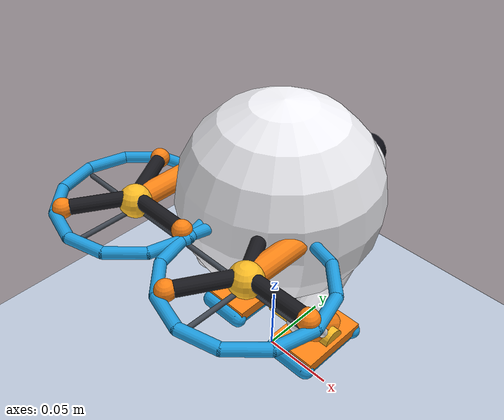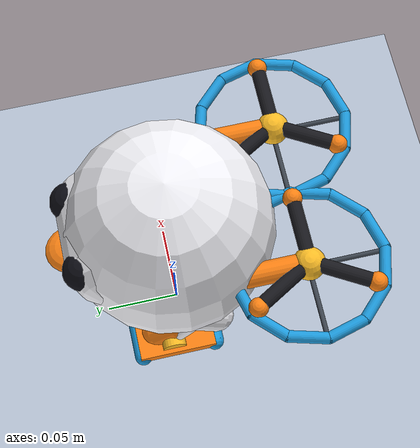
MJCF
<mujoco model="bipedal_vtol_robot_bird">
    <compiler angle="radian" coordinate="local" inertiafromgeom="true"/>
    <option gravity="0 0 -9.81" timestep="0.002" integrator="RK4"/>

    <default>
        <joint damping="0.15" armature="0.02"/>
        <geom friction="2.0 0.1 0.1" density="50" solref="0.01 1" solimp="0.90 0.95 0.001"/>
        <position kp="350" kv="20" forcerange="-35 35"/>
    </default>

    <visual>
        <headlight diffuse="0.65 0.65 0.65" ambient="0.45 0.45 0.45" specular="0.0 0.0 0.0"/>
        <rgba haze="0.15 0.25 0.35 1"/>
    </visual>

    <asset>
        <texture type="skybox" builtin="gradient" rgb1="0.5 0.7 0.9" rgb2="0.9 0.95 1.0" width="512" height="512"/>
        <texture name="grid" type="2d" builtin="checker" width="512" height="512" rgb1="0.90 0.92 0.96" rgb2="0.55 0.62 0.72"/>
        <material name="grid_mat" texture="grid" texrepeat="8 8" reflectance="0.05"/>

        <material name="body_white" rgba="0.96 0.96 0.98 1.0" specular="0.6" shininess="0.9"/>
        <material name="body_accent" rgba="1.0 0.52 0.08 1.0" specular="0.7" shininess="0.8"/>
        <material name="eye_black" rgba="0.05 0.05 0.08 1.0" specular="0.9" shininess="1.0"/>
        <material name="eye_pupil" rgba="0.15 0.75 1.0 1.0" emission="0.6"/>
        <material name="leg_metal" rgba="0.25 0.28 0.32 1.0" specular="0.8"/>

        <material name="duct_rim_cyan" rgba="0.12 0.62 0.88 1.0" specular="0.8" shininess="0.9"/>
        <material name="mesh_grille" rgba="0.2 0.25 0.3 0.85" specular="0.7"/>
        <material name="prop_carbon" rgba="0.1 0.1 0.12 1.0" specular="0.5"/>
        <material name="spinner_gold" rgba="1.0 0.75 0.15 1.0" specular="0.9"/>
    </asset>

    <worldbody>
        <light pos="0 -1 3.5" dir="0 0.3 -1" directional="true" castshadow="true"/>
        <geom name="floor" type="plane" size="10 10 0.1" material="grid_mat" conaffinity="15" contype="15"/>

        <!-- 🐦 로봇새 메인 바디 -->
        <body name="torso" pos="0 0 0.14">
            <freejoint name="root"/>

            <geom name="torso_sphere" type="sphere" size="0.065" mass="0.15" material="body_white"/>
            <!-- 하단 배터리 저중심 웨이트 (몸체 구체 내부 안쪽에 쏙 수납하여 시야 간섭 100% 차단) -->
            <geom name="battery_weight" type="box" size="0.025 0.025 0.012" pos="0 0.0 -0.030" mass="0.14" material="leg_metal"/>

            <!-- 🐦 독립 목/머리 피치 관절: 날개와 몸통은 수평 그대로 유지하고 머리(두 눈+부리+얼굴) 전체가 아래로 55° 쏙 숙여짐! -->
            <body name="head" pos="0 0.035 0.008">
                <joint name="neck_pitch" type="hinge" axis="1 0 0" range="-1.4 0.3" pos="0 0 0"/>

                <geom name="face_visor" type="capsule" fromto="-0.018 0.005 0 0.018 0.005 0" size="0.025" mass="0.005" material="body_white"/>
                <geom name="left_eye" type="sphere" size="0.012" pos="0.022 0.020 0.007" mass="0.001" material="eye_black"/>
                <geom name="left_pupil" type="sphere" size="0.005" pos="0.022 0.025 0.009" mass="0.001" material="eye_pupil"/>
                <geom name="right_eye" type="sphere" size="0.012" pos="-0.022 0.020 0.007" mass="0.001" material="eye_black"/>
                <geom name="right_pupil" type="sphere" size="0.005" pos="-0.022 0.025 0.009" mass="0.001" material="eye_pupil"/>
                <geom name="beak" type="ellipsoid" size="0.015 0.016 0.007" pos="0 0.025 -0.013" mass="0.002" material="body_accent"/>

                <!-- 📷 머리에 고정된 1인칭 눈 시선 카메라 (장애물 없이 바닥과 하늘이 시원하게 트인 FPV 시야) -->
                <camera name="head_fpv_cam" pos="0 0.038 0.012" fovy="85" mode="fixed" xyaxes="1 0 0 0 0 1"/>
                <camera name="left_eye_cam" pos="0.022 0.030 0.010" fovy="85" mode="fixed" xyaxes="1 0 0 0 0 1"/>
                <camera name="right_eye_cam" pos="-0.022 0.030 0.010" fovy="85" mode="fixed" xyaxes="1 0 0 0 0 1"/>
            </body>

            <!-- 🪽 좌측 날개: Z축(수평) 회전 힌지                                                          -->
            <!-- 0 rad: 등 뒤(-Y)로 쏙 포개짐                                                               -->
            <!-- +1.57 rad: 좌측(+X)으로 180° 수평으로 쫙 펼쳐짐!                                           -->
            <body name="left_wing_base" pos="0.045 0 0.01">
                <joint name="left_wing_fold" type="hinge" axis="0 0 1" range="-0.2 1.8" pos="0 0 0"/>
                <geom name="left_wing_arm" type="capsule" fromto="0 0 0 0 -0.075 0" size="0.007" mass="0.003" material="body_accent"/>

                <body name="left_rotor_tilt" pos="0 -0.075 0">
                    <joint name="left_tilt" type="hinge" axis="1 0 0" range="-0.5 2.0" pos="0 0 0"/>

                    <!-- 🛞 속이 뻥 뚫린 아름다운 원형 덕트 림 (Duct Guard Ring) -->
                    <geom name="l_ring_0" type="capsule" fromto="0.0460 0.0000 0 0.0398 0.0230 0" size="0.0035" mass="0.0004" material="duct_rim_cyan"/>
                    <geom name="l_ring_1" type="capsule" fromto="0.0398 0.0230 0 0.0230 0.0398 0" size="0.0035" mass="0.0004" material="duct_rim_cyan"/>
                    <geom name="l_ring_2" type="capsule" fromto="0.0230 0.0398 0 0.0000 0.0460 0" size="0.0035" mass="0.0004" material="duct_rim_cyan"/>
                    <geom name="l_ring_3" type="capsule" fromto="0.0000 0.0460 0 -0.0230 0.0398 0" size="0.0035" mass="0.0004" material="duct_rim_cyan"/>
                    <geom name="l_ring_4" type="capsule" fromto="-0.0230 0.0398 0 -0.0398 0.0230 0" size="0.0035" mass="0.0004" material="duct_rim_cyan"/>
                    <geom name="l_ring_5" type="capsule" fromto="-0.0398 0.0230 0 -0.0460 0.0000 0" size="0.0035" mass="0.0004" material="duct_rim_cyan"/>
                    <geom name="l_ring_6" type="capsule" fromto="-0.0460 0.0000 0 -0.0398 -0.0230 0" size="0.0035" mass="0.0004" material="duct_rim_cyan"/>
                    <geom name="l_ring_7" type="capsule" fromto="-0.0398 -0.0230 0 -0.0230 -0.0398 0" size="0.0035" mass="0.0004" material="duct_rim_cyan"/>
                    <geom name="l_ring_8" type="capsule" fromto="-0.0230 -0.0398 0 0.0000 -0.0460 0" size="0.0035" mass="0.0004" material="duct_rim_cyan"/>
                    <geom name="l_ring_9" type="capsule" fromto="0.0000 -0.0460 0 0.0230 -0.0398 0" size="0.0035" mass="0.0004" material="duct_rim_cyan"/>
                    <geom name="l_ring_10" type="capsule" fromto="0.0230 -0.0398 0 0.0398 -0.0230 0" size="0.0035" mass="0.0004" material="duct_rim_cyan"/>
                    <geom name="l_ring_11" type="capsule" fromto="0.0398 -0.0230 0 0.0460 0.0000 0" size="0.0035" mass="0.0004" material="duct_rim_cyan"/>

                    <!-- 하단 모터 마운트 지지 스포크 -->
                    <geom name="l_spoke_1" type="capsule" fromto="-0.044 0 -0.005 0.044 0 -0.005" size="0.0015" mass="0.0002" material="leg_metal"/>
                    <geom name="l_spoke_2" type="capsule" fromto="0 -0.044 -0.005 0 0.044 -0.005" size="0.0015" mass="0.0002" material="leg_metal"/>

                    <!-- 중앙 모터 허브 스피너 -->
                    <geom name="left_spinner" type="sphere" size="0.010" pos="0 0 0" mass="0.001" material="spinner_gold"/>

                    <!-- 🌪️ 3엽 다이내믹 고속 회전 프로펠러 (눈에 확실히 보이는 컬러 팁 장착) -->
                    <body name="left_propeller" pos="0 0 0.003">
                        <joint name="left_prop_spin" type="hinge" axis="0 0 1" damping="0.0005"/>
                        <!-- 120도 간격 3엽 블레이드 -->
                        <geom name="l_b1" type="capsule" fromto="0 0 0 0.041 0 0" size="0.0045" mass="0.0005" material="prop_carbon"/>
                        <geom name="l_b1_tip" type="sphere" size="0.006" pos="0.041 0 0" mass="0.0001" material="body_accent"/>

                        <geom name="l_b2" type="capsule" fromto="0 0 0 -0.0205 0.0355 0" size="0.0045" mass="0.0005" material="prop_carbon"/>
                        <geom name="l_b2_tip" type="sphere" size="0.006" pos="-0.0205 0.0355 0" mass="0.0001" material="body_accent"/>

                        <geom name="l_b3" type="capsule" fromto="0 0 0 -0.0205 -0.0355 0" size="0.0045" mass="0.0005" material="prop_carbon"/>
                        <geom name="l_b3_tip" type="sphere" size="0.006" pos="-0.0205 -0.0355 0" mass="0.0001" material="body_accent"/>
                    </body>
                </body>
            </body>

            <!-- 🪽 우측 날개: Z축(수평) 회전 힌지                                                          -->
            <!-- 0 rad: 등 뒤(-Y)로 쏙 포개짐 (좌측 덕트와 포개짐)                                           -->
            <!-- -1.57 rad: 우측(-X)으로 180° 수평으로 쫙 펼쳐짐!                                           -->
            <body name="right_wing_base" pos="-0.045 0 0.01">
                <joint name="right_wing_fold" type="hinge" axis="0 0 1" range="-1.8 0.2" pos="0 0 0"/>
                <geom name="right_wing_arm" type="capsule" fromto="0 0 0 0 -0.075 0" size="0.007" mass="0.003" material="body_accent"/>

                <body name="right_rotor_tilt" pos="0 -0.075 0">
                    <joint name="right_tilt" type="hinge" axis="1 0 0" range="-0.5 2.0" pos="0 0 0"/>

                    <!-- 🛞 속이 뻥 뚫린 아름다운 원형 덕트 림 (Duct Guard Ring) -->
                    <geom name="r_ring_0" type="capsule" fromto="0.0460 0.0000 0 0.0398 0.0230 0" size="0.0035" mass="0.0004" material="duct_rim_cyan"/>
                    <geom name="r_ring_1" type="capsule" fromto="0.0398 0.0230 0 0.0230 0.0398 0" size="0.0035" mass="0.0004" material="duct_rim_cyan"/>
                    <geom name="r_ring_2" type="capsule" fromto="0.0230 0.0398 0 0.0000 0.0460 0" size="0.0035" mass="0.0004" material="duct_rim_cyan"/>
                    <geom name="r_ring_3" type="capsule" fromto="0.0000 0.0460 0 -0.0230 0.0398 0" size="0.0035" mass="0.0004" material="duct_rim_cyan"/>
                    <geom name="r_ring_4" type="capsule" fromto="-0.0230 0.0398 0 -0.0398 0.0230 0" size="0.0035" mass="0.0004" material="duct_rim_cyan"/>
                    <geom name="r_ring_5" type="capsule" fromto="-0.0398 0.0230 0 -0.0460 0.0000 0" size="0.0035" mass="0.0004" material="duct_rim_cyan"/>
                    <geom name="r_ring_6" type="capsule" fromto="-0.0460 0.0000 0 -0.0398 -0.0230 0" size="0.0035" mass="0.0004" material="duct_rim_cyan"/>
                    <geom name="r_ring_7" type="capsule" fromto="-0.0398 -0.0230 0 -0.0230 -0.0398 0" size="0.0035" mass="0.0004" material="duct_rim_cyan"/>
                    <geom name="r_ring_8" type="capsule" fromto="-0.0230 -0.0398 0 0.0000 -0.0460 0" size="0.0035" mass="0.0004" material="duct_rim_cyan"/>
                    <geom name="r_ring_9" type="capsule" fromto="0.0000 -0.0460 0 0.0230 -0.0398 0" size="0.0035" mass="0.0004" material="duct_rim_cyan"/>
                    <geom name="r_ring_10" type="capsule" fromto="0.0230 -0.0398 0 0.0398 -0.0230 0" size="0.0035" mass="0.0004" material="duct_rim_cyan"/>
                    <geom name="r_ring_11" type="capsule" fromto="0.0398 -0.0230 0 0.0460 0.0000 0" size="0.0035" mass="0.0004" material="duct_rim_cyan"/>

                    <!-- 하단 모터 마운트 지지 스포크 -->
                    <geom name="r_spoke_1" type="capsule" fromto="-0.044 0 -0.005 0.044 0 -0.005" size="0.0015" mass="0.0002" material="leg_metal"/>
                    <geom name="r_spoke_2" type="capsule" fromto="0 -0.044 -0.005 0 0.044 -0.005" size="0.0015" mass="0.0002" material="leg_metal"/>

                    <!-- 중앙 모터 허브 스피너 -->
                    <geom name="right_spinner" type="sphere" size="0.010" pos="0 0 0" mass="0.001" material="spinner_gold"/>

                    <!-- 🌪️ 3엽 다이내믹 고속 회전 프로펠러 (눈에 확실히 보이는 컬러 팁 장착) -->
                    <body name="right_propeller" pos="0 0 0.003">
                        <joint name="right_prop_spin" type="hinge" axis="0 0 1" damping="0.0005"/>
                        <!-- 120도 간격 3엽 블레이드 -->
                        <geom name="r_b1" type="capsule" fromto="0 0 0 0.041 0 0" size="0.0045" mass="0.0005" material="prop_carbon"/>
                        <geom name="r_b1_tip" type="sphere" size="0.006" pos="0.041 0 0" mass="0.0001" material="body_accent"/>

                        <geom name="r_b2" type="capsule" fromto="0 0 0 -0.0205 0.0355 0" size="0.0045" mass="0.0005" material="prop_carbon"/>
                        <geom name="r_b2_tip" type="sphere" size="0.006" pos="-0.0205 0.0355 0" mass="0.0001" material="body_accent"/>

                        <geom name="r_b3" type="capsule" fromto="0 0 0 -0.0205 -0.0355 0" size="0.0045" mass="0.0005" material="prop_carbon"/>
                        <geom name="r_b3_tip" type="sphere" size="0.006" pos="-0.0205 -0.0355 0" mass="0.0001" material="body_accent"/>
                    </body>
                </body>
            </body>

            <!-- ==================== 🦵 좌측 2족 보행 다리 (디즈니/BDX 스타일 역관절 + 화이트 아머 + 투톤 슈즈) ==================== -->
            <body name="left_hip" pos="0.032 0.010 -0.035">
                <joint name="left_hip_pitch" type="hinge" axis="1 0 0" range="-1.8 1.8" pos="0 0 0"/>
                <!-- 메인 허벅지 프레임 + 외측 화이트 아머 커버 (사진 1, 2, 3) -->
                <geom name="left_thigh" type="capsule" fromto="0 0 0 0 -0.030 -0.030" size="0.008" mass="0.008" material="leg_metal"/>
                <geom name="left_thigh_armor" type="capsule" fromto="0.010 0 0 0.010 -0.030 -0.030" size="0.011" mass="0.004" material="body_white"/>

                <body name="left_knee" pos="0 -0.030 -0.030">
                    <joint name="left_knee_pitch" type="hinge" axis="1 0 0" range="-2.2 2.2" pos="0 0 0"/>
                    <geom name="left_knee_hub" type="cylinder" size="0.008 0.012" pos="0 0 0" quat="0.707 0 0.707 0" mass="0.002" material="spinner_gold"/>
                    <geom name="left_shin" type="capsule" fromto="0 0 0 0 0.030 -0.042" size="0.008" mass="0.008" material="leg_metal"/>
                    <geom name="left_shin_brace" type="capsule" fromto="0.008 0.005 -0.005 0.008 0.025 -0.035" size="0.004" mass="0.002" material="body_white"/>

                    <!-- 👟 입체형 2단 투톤 컬러 슈즈 (오렌지 U-브래킷 + 민트/시안 라운드 러버솔) -->
                    <body name="left_foot" pos="0 0.030 -0.042">
                        <joint name="left_ankle_pitch" type="hinge" axis="1 0 0" range="-1.5 1.5" pos="0 0 0"/>

                        <!-- 1. 발목 피벗 모터/베어링 골드 디스크 (사진 속 원형 축) -->
                        <geom name="left_ankle_hub" type="cylinder" size="0.008 0.015" pos="0 0 0" quat="0.707 0 0.707 0" mass="0.003" material="spinner_gold"/>

                        <!-- 2. 상단 오렌지/옐로우 U자형 발목 브래킷 (사진 1, 2, 3 U자 컵) -->
                        <geom name="left_ankle_bracket" type="capsule" fromto="0 -0.004 0.006 0 0.010 -0.004" size="0.011" mass="0.008" material="body_accent"/>
                        <geom name="left_shoe_top" type="box" size="0.018 0.026 0.004" pos="0 -0.002 -0.004" mass="0.01" material="body_accent"/>

                        <!-- 3. 하단 민트/시안 라운드 롤러 러버솔 (뒤꿈치를 2.8cm로 확장하여 후진 보행 완벽 지지) -->
                        <geom name="left_sole_heel" type="capsule" fromto="-0.014 -0.028 -0.008 0.014 -0.028 -0.008" size="0.006" mass="0.006" friction="3.0 0.1 0.1" material="duct_rim_cyan"/>
                        <geom name="left_sole_toe" type="capsule" fromto="-0.014 0.022 -0.008 0.014 0.022 -0.008" size="0.006" mass="0.005" friction="3.0 0.1 0.1" material="duct_rim_cyan"/>
                        <geom name="left_sole_base" type="box" size="0.017 0.024 0.004" pos="0 -0.003 -0.008" mass="0.01" friction="3.0 0.1 0.1" material="duct_rim_cyan"/>
                    </body>
                </body>
            </body>

            <!-- ==================== 🦵 우측 2족 보행 다리 (디즈니/BDX 스타일 역관절 + 화이트 아머 + 투톤 슈즈) ==================== -->
            <body name="right_hip" pos="-0.032 0.010 -0.035">
                <joint name="right_hip_pitch" type="hinge" axis="1 0 0" range="-1.8 1.8" pos="0 0 0"/>
                <!-- 메인 허벅지 프레임 + 외측 화이트 아머 커버 (사진 1, 2, 3) -->
                <geom name="right_thigh" type="capsule" fromto="0 0 0 0 -0.030 -0.030" size="0.008" mass="0.008" material="leg_metal"/>
                <geom name="right_thigh_armor" type="capsule" fromto="-0.010 0 0 -0.010 -0.030 -0.030" size="0.011" mass="0.004" material="body_white"/>

                <body name="right_knee" pos="0 -0.030 -0.030">
                    <joint name="right_knee_pitch" type="hinge" axis="1 0 0" range="-2.2 2.2" pos="0 0 0"/>
                    <geom name="right_knee_hub" type="cylinder" size="0.008 0.012" pos="0 0 0" quat="0.707 0 0.707 0" mass="0.002" material="spinner_gold"/>
                    <geom name="right_shin" type="capsule" fromto="0 0 0 0 0.030 -0.042" size="0.008" mass="0.008" material="leg_metal"/>
                    <geom name="right_shin_brace" type="capsule" fromto="-0.008 0.005 -0.005 -0.008 0.025 -0.035" size="0.004" mass="0.002" material="body_white"/>

                    <!-- 👟 입체형 2단 투톤 컬러 슈즈 (오렌지 U-브래킷 + 민트/시안 라운드 러버솔) -->
                    <body name="right_foot" pos="0 0.030 -0.042">
                        <joint name="right_ankle_pitch" type="hinge" axis="1 0 0" range="-1.5 1.5" pos="0 0 0"/>

                        <!-- 1. 발목 피벗 모터/베어링 골드 디스크 (사진 속 원형 축) -->
                        <geom name="right_ankle_hub" type="cylinder" size="0.008 0.015" pos="0 0 0" quat="0.707 0 0.707 0" mass="0.003" material="spinner_gold"/>

                        <!-- 2. 상단 오렌지/옐로우 U자형 발목 브래킷 (사진 1, 2, 3 U자 컵) -->
                        <geom name="right_ankle_bracket" type="capsule" fromto="0 -0.004 0.006 0 0.010 -0.004" size="0.011" mass="0.008" material="body_accent"/>
                        <geom name="right_shoe_top" type="box" size="0.018 0.026 0.004" pos="0 -0.002 -0.004" mass="0.01" material="body_accent"/>

                        <!-- 3. 하단 민트/시안 라운드 롤러 러버솔 (뒤꿈치를 2.8cm로 확장하여 후진 보행 완벽 지지) -->
                        <geom name="right_sole_heel" type="capsule" fromto="-0.014 -0.028 -0.008 0.014 -0.028 -0.008" size="0.006" mass="0.006" friction="3.0 0.1 0.1" material="duct_rim_cyan"/>
                        <geom name="right_sole_toe" type="capsule" fromto="-0.014 0.022 -0.008 0.014 0.022 -0.008" size="0.006" mass="0.005" friction="3.0 0.1 0.1" material="duct_rim_cyan"/>
                        <geom name="right_sole_base" type="box" size="0.017 0.024 0.004" pos="0 -0.003 -0.008" mass="0.01" friction="3.0 0.1 0.1" material="duct_rim_cyan"/>
                    </body>
                </body>
            </body>

        </body>
    </worldbody>

    <!-- 액추에이터 -->
    <actuator>
        <position name="act_l_hip" joint="left_hip_pitch" ctrlrange="-1.8 1.8" kp="500" kv="30"/>
        <position name="act_l_knee" joint="left_knee_pitch" ctrlrange="-2.2 2.2" kp="500" kv="30"/>
        <position name="act_l_ankle" joint="left_ankle_pitch" ctrlrange="-1.5 1.5" kp="500" kv="30"/>

        <position name="act_r_hip" joint="right_hip_pitch" ctrlrange="-1.8 1.8" kp="500" kv="30"/>
        <position name="act_r_knee" joint="right_knee_pitch" ctrlrange="-2.2 2.2" kp="500" kv="30"/>
        <position name="act_r_ankle" joint="right_ankle_pitch" ctrlrange="-1.5 1.5" kp="500" kv="30"/>

        <!-- 날개 회전축: Z축 수평 회전 -->
        <position name="act_l_fold" joint="left_wing_fold" ctrlrange="-0.2 1.8" kp="150" kv="10"/>
        <position name="act_r_fold" joint="right_wing_fold" ctrlrange="-1.8 0.2" kp="150" kv="10"/>

        <!-- 틸트 로터 서보: 세로 접힘(1.57rad) ~ 수평 전개(0rad) -->
        <position name="act_l_tilt" joint="left_tilt" ctrlrange="-0.5 2.0" kp="180" kv="12"/>
        <position name="act_r_tilt" joint="right_tilt" ctrlrange="-0.5 2.0" kp="180" kv="12"/>

        <!-- 🐦 머리/목 피치 서보: 몸통/날개는 수평 유지, 머리(두 눈+부리)가 아래로 55° 쏙 숙여짐! -->
        <position name="act_neck" joint="neck_pitch" ctrlrange="-1.4 0.3" kp="150" kv="10"/>
    </actuator>
</mujoco>
